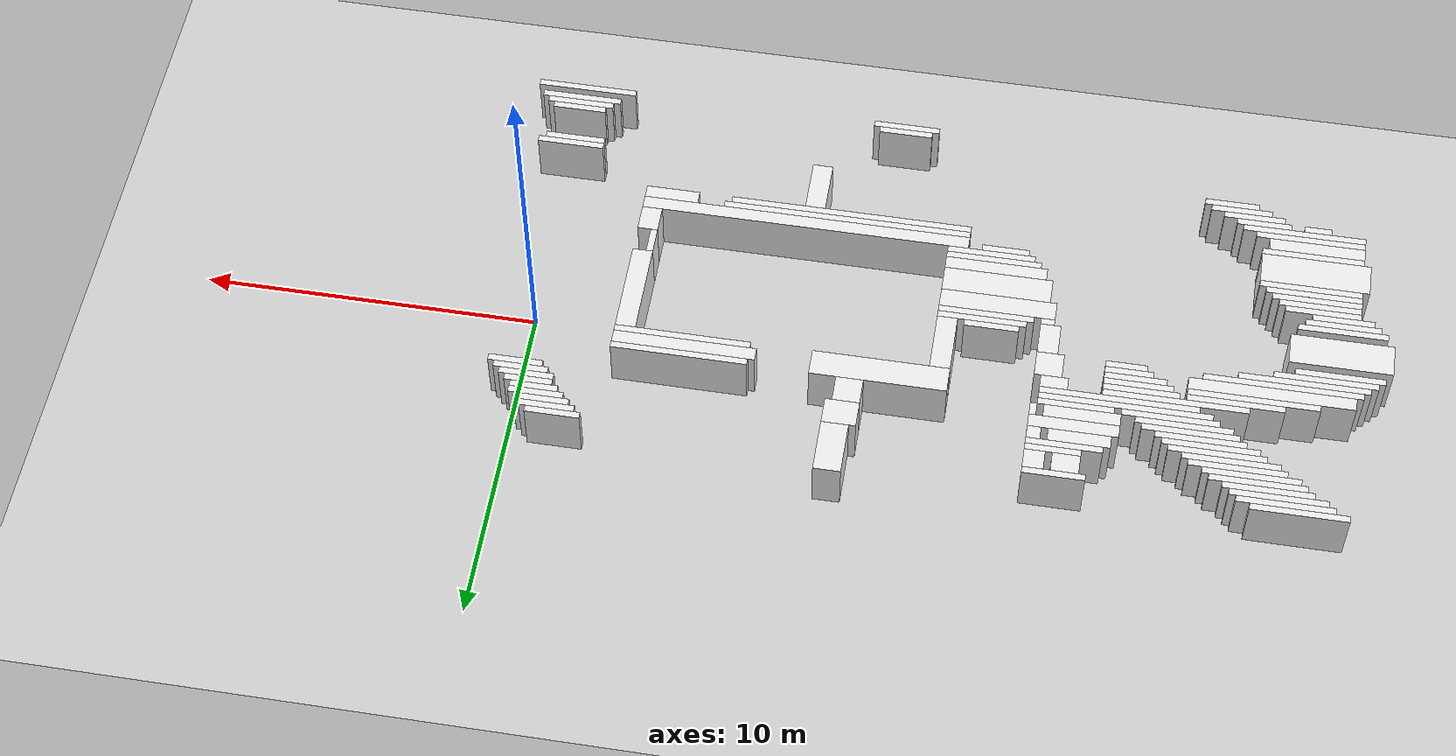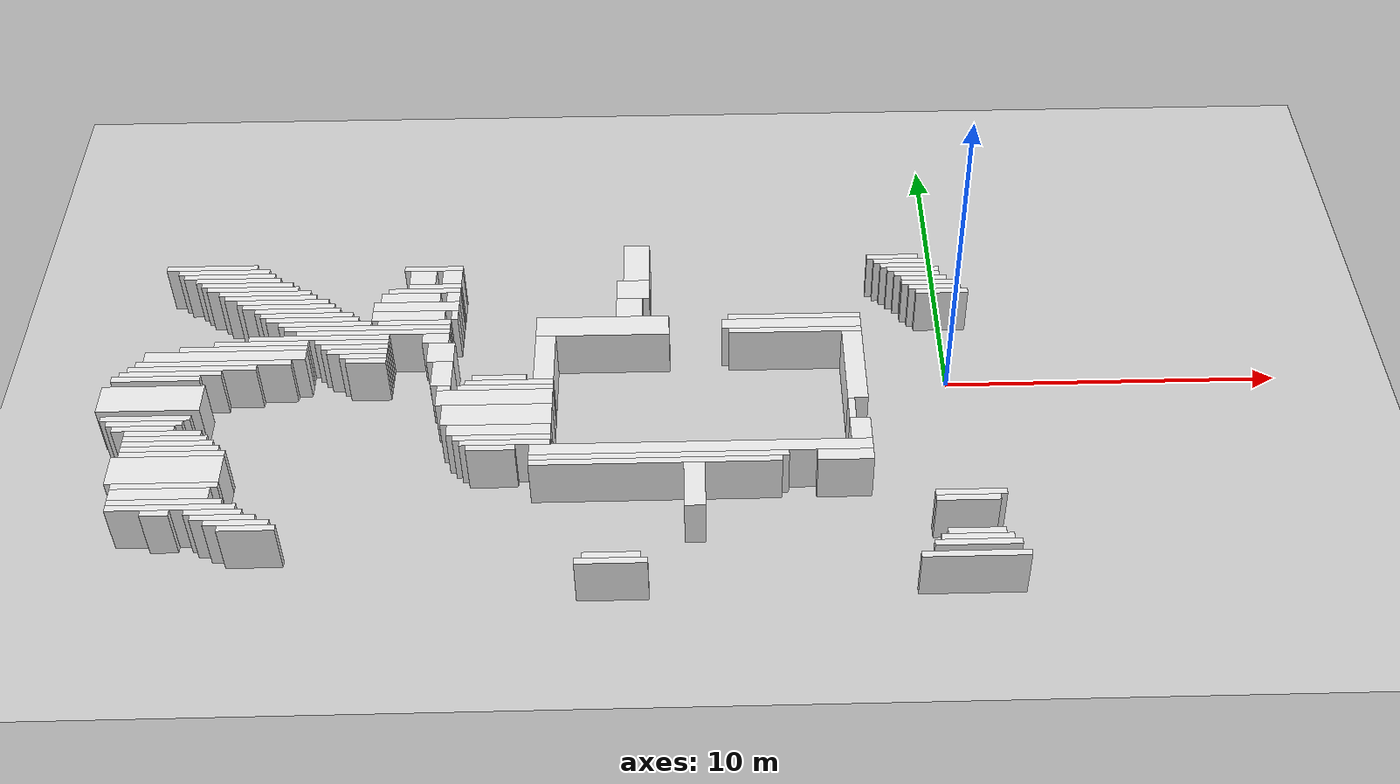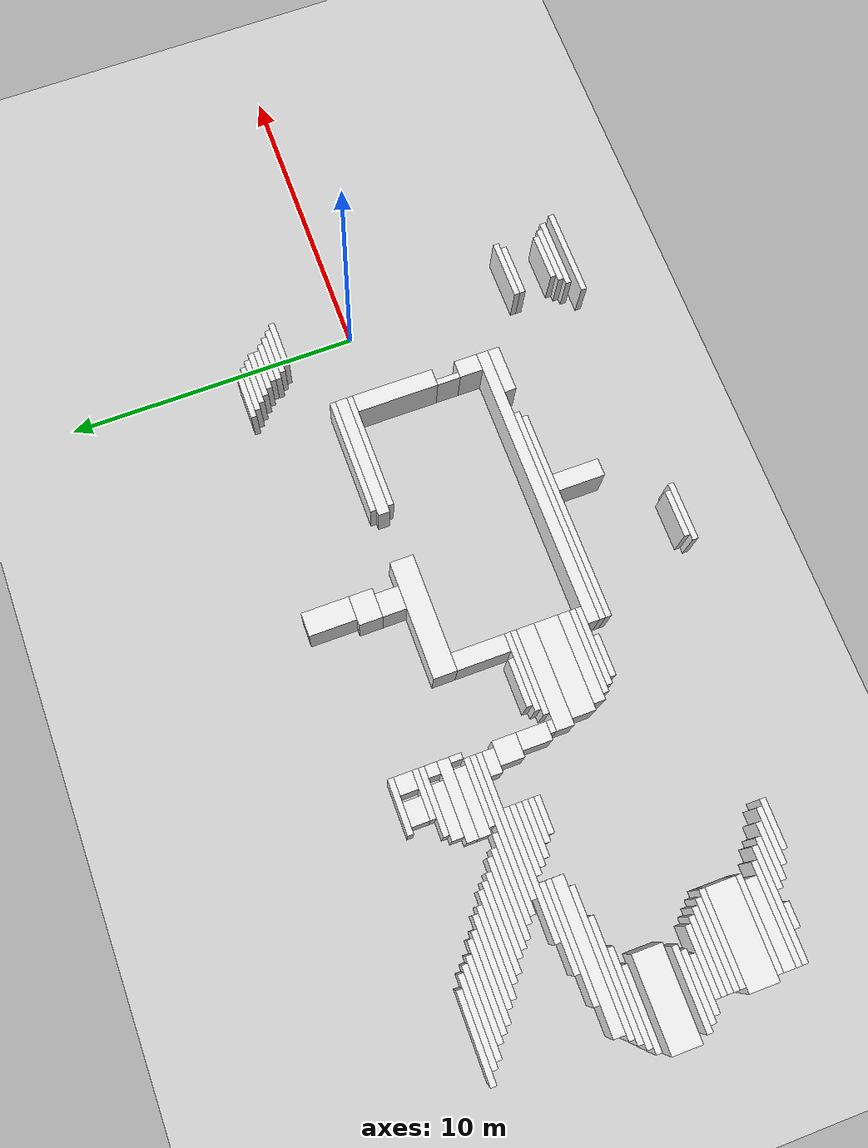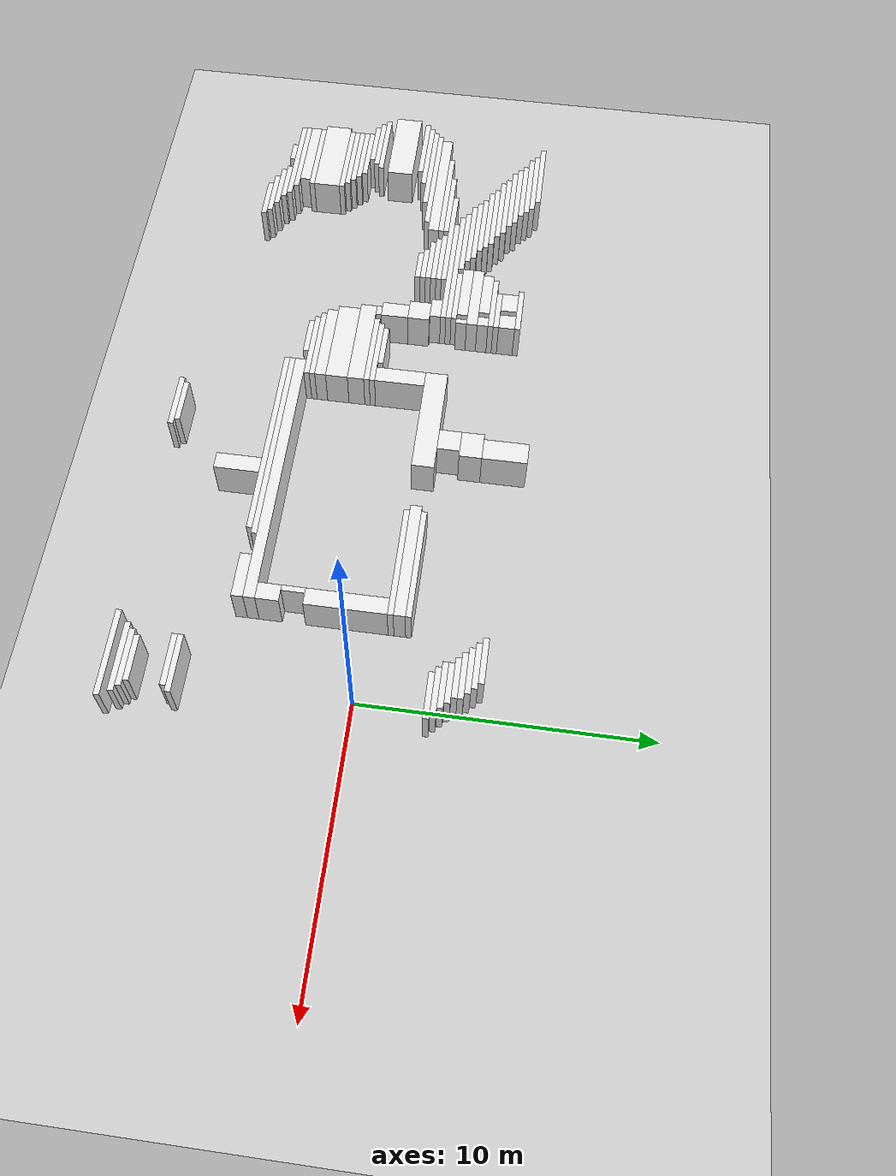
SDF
<sdf version="1.7">
 <world name="default">
  <model name="ground_plane">
   <static>1</static>
   <link name="link">
    <collision name="collision">
     <geometry><plane><normal>0 0 1</normal><size>120 120</size></plane></geometry>
    </collision>
    <visual name="visual">
     <geometry><plane><normal>0 0 1</normal><size>120 120</size></plane></geometry>
     <material>
      <script><uri>file://media/materials/scripts/gazebo.material</uri><name>Gazebo/Grey</name></script>
     </material>
    </visual>
   </link>
  </model>
  <model name="random_complex_02_model">
   <static>1</static>
   <link name="obs_1786">
    <pose>-22.6000 4.1000 0.8000 0 0 0</pose>
    <collision name="obs_1786_col"><geometry><box><size>2.8000 0.2000 1.6000</size></box></geometry></collision>
    <visual name="obs_1786_vis">
     <geometry><box><size>2.8000 0.2000 1.6000</size></box></geometry>
     <material>
      <script><uri>file://media/materials/scripts/gazebo.material</uri><name>Gazebo/White</name></script>
     </material>
    </visual>
   </link>
   <link name="obs_1787">
    <pose>-1.4000 4.1000 0.8000 0 0 0</pose>
    <collision name="obs_1787_col"><geometry><box><size>1.6000 0.2000 1.6000</size></box></geometry></collision>
    <visual name="obs_1787_vis">
     <geometry><box><size>1.6000 0.2000 1.6000</size></box></geometry>
     <material>
      <script><uri>file://media/materials/scripts/gazebo.material</uri><name>Gazebo/White</name></script>
     </material>
    </visual>
   </link>
   <link name="obs_1799">
    <pose>-22.2000 3.9000 0.8000 0 0 0</pose>
    <collision name="obs_1799_col"><geometry><box><size>2.8000 0.2000 1.6000</size></box></geometry></collision>
    <visual name="obs_1799_vis">
     <geometry><box><size>2.8000 0.2000 1.6000</size></box></geometry>
     <material>
      <script><uri>file://media/materials/scripts/gazebo.material</uri><name>Gazebo/White</name></script>
     </material>
    </visual>
   </link>
   <link name="obs_1800">
    <pose>-15.7000 3.9000 0.8000 0 0 0</pose>
    <collision name="obs_1800_col"><geometry><box><size>1.8000 0.2000 1.6000</size></box></geometry></collision>
    <visual name="obs_1800_vis">
     <geometry><box><size>1.8000 0.2000 1.6000</size></box></geometry>
     <material>
      <script><uri>file://media/materials/scripts/gazebo.material</uri><name>Gazebo/White</name></script>
     </material>
    </visual>
   </link>
   <link name="obs_1801">
    <pose>-1.2000 3.9000 0.8000 0 0 0</pose>
    <collision name="obs_1801_col"><geometry><box><size>1.6000 0.2000 1.6000</size></box></geometry></collision>
    <visual name="obs_1801_vis">
     <geometry><box><size>1.6000 0.2000 1.6000</size></box></geometry>
     <material>
      <script><uri>file://media/materials/scripts/gazebo.material</uri><name>Gazebo/White</name></script>
     </material>
    </visual>
   </link>
   <link name="obs_1809">
    <pose>-22.0000 3.7000 0.8000 0 0 0</pose>
    <collision name="obs_1809_col"><geometry><box><size>2.8000 0.2000 1.6000</size></box></geometry></collision>
    <visual name="obs_1809_vis">
     <geometry><box><size>2.8000 0.2000 1.6000</size></box></geometry>
     <material>
      <script><uri>file://media/materials/scripts/gazebo.material</uri><name>Gazebo/White</name></script>
     </material>
    </visual>
   </link>
   <link name="obs_1810">
    <pose>-1.0000 3.7000 0.8000 0 0 0</pose>
    <collision name="obs_1810_col"><geometry><box><size>1.6000 0.2000 1.6000</size></box></geometry></collision>
    <visual name="obs_1810_vis">
     <geometry><box><size>1.6000 0.2000 1.6000</size></box></geometry>
     <material>
      <script><uri>file://media/materials/scripts/gazebo.material</uri><name>Gazebo/White</name></script>
     </material>
    </visual>
   </link>
   <link name="obs_1813">
    <pose>-21.7000 3.5000 0.8000 0 0 0</pose>
    <collision name="obs_1813_col"><geometry><box><size>2.6000 0.2000 1.6000</size></box></geometry></collision>
    <visual name="obs_1813_vis">
     <geometry><box><size>2.6000 0.2000 1.6000</size></box></geometry>
     <material>
      <script><uri>file://media/materials/scripts/gazebo.material</uri><name>Gazebo/White</name></script>
     </material>
    </visual>
   </link>
   <link name="obs_1814">
    <pose>-0.8000 3.5000 0.8000 0 0 0</pose>
    <collision name="obs_1814_col"><geometry><box><size>1.6000 0.2000 1.6000</size></box></geometry></collision>
    <visual name="obs_1814_vis">
     <geometry><box><size>1.6000 0.2000 1.6000</size></box></geometry>
     <material>
      <script><uri>file://media/materials/scripts/gazebo.material</uri><name>Gazebo/White</name></script>
     </material>
    </visual>
   </link>
   <link name="obs_1816">
    <pose>-9.4000 4.0000 0.8000 0 0 0</pose>
    <collision name="obs_1816_col"><geometry><box><size>0.8000 1.6000 1.6000</size></box></geometry></collision>
    <visual name="obs_1816_vis">
     <geometry><box><size>0.8000 1.6000 1.6000</size></box></geometry>
     <material>
      <script><uri>file://media/materials/scripts/gazebo.material</uri><name>Gazebo/White</name></script>
     </material>
    </visual>
   </link>
   <link name="obs_1817">
    <pose>-16.0000 3.5000 0.8000 0 0 0</pose>
    <collision name="obs_1817_col"><geometry><box><size>0.8000 0.6000 1.6000</size></box></geometry></collision>
    <visual name="obs_1817_vis">
     <geometry><box><size>0.8000 0.6000 1.6000</size></box></geometry>
     <material>
      <script><uri>file://media/materials/scripts/gazebo.material</uri><name>Gazebo/White</name></script>
     </material>
    </visual>
   </link>
   <link name="obs_1818">
    <pose>-15.1000 3.5000 0.8000 0 0 0</pose>
    <collision name="obs_1818_col"><geometry><box><size>0.6000 0.6000 1.6000</size></box></geometry></collision>
    <visual name="obs_1818_vis">
     <geometry><box><size>0.6000 0.6000 1.6000</size></box></geometry>
     <material>
      <script><uri>file://media/materials/scripts/gazebo.material</uri><name>Gazebo/White</name></script>
     </material>
    </visual>
   </link>
   <link name="obs_1823">
    <pose>-21.4000 3.3000 0.8000 0 0 0</pose>
    <collision name="obs_1823_col"><geometry><box><size>2.8000 0.2000 1.6000</size></box></geometry></collision>
    <visual name="obs_1823_vis">
     <geometry><box><size>2.8000 0.2000 1.6000</size></box></geometry>
     <material>
      <script><uri>file://media/materials/scripts/gazebo.material</uri><name>Gazebo/White</name></script>
     </material>
    </visual>
   </link>
   <link name="obs_1824">
    <pose>-0.7000 3.3000 0.8000 0 0 0</pose>
    <collision name="obs_1824_col"><geometry><box><size>1.4000 0.2000 1.6000</size></box></geometry></collision>
    <visual name="obs_1824_vis">
     <geometry><box><size>1.4000 0.2000 1.6000</size></box></geometry>
     <material>
      <script><uri>file://media/materials/scripts/gazebo.material</uri><name>Gazebo/White</name></script>
     </material>
    </visual>
   </link>
   <link name="obs_1825">
    <pose>-21.2000 3.1000 0.8000 0 0 0</pose>
    <collision name="obs_1825_col"><geometry><box><size>2.8000 0.2000 1.6000</size></box></geometry></collision>
    <visual name="obs_1825_vis">
     <geometry><box><size>2.8000 0.2000 1.6000</size></box></geometry>
     <material>
      <script><uri>file://media/materials/scripts/gazebo.material</uri><name>Gazebo/White</name></script>
     </material>
    </visual>
   </link>
   <link name="obs_1826">
    <pose>-15.6000 3.1000 0.8000 0 0 0</pose>
    <collision name="obs_1826_col"><geometry><box><size>1.6000 0.2000 1.6000</size></box></geometry></collision>
    <visual name="obs_1826_vis">
     <geometry><box><size>1.6000 0.2000 1.6000</size></box></geometry>
     <material>
      <script><uri>file://media/materials/scripts/gazebo.material</uri><name>Gazebo/White</name></script>
     </material>
    </visual>
   </link>
   <link name="obs_1827">
    <pose>-0.5000 3.1000 0.8000 0 0 0</pose>
    <collision name="obs_1827_col"><geometry><box><size>1.4000 0.2000 1.6000</size></box></geometry></collision>
    <visual name="obs_1827_vis">
     <geometry><box><size>1.4000 0.2000 1.6000</size></box></geometry>
     <material>
      <script><uri>file://media/materials/scripts/gazebo.material</uri><name>Gazebo/White</name></script>
     </material>
    </visual>
   </link>
   <link name="obs_1832">
    <pose>-20.8000 2.9000 0.8000 0 0 0</pose>
    <collision name="obs_1832_col"><geometry><box><size>2.8000 0.2000 1.6000</size></box></geometry></collision>
    <visual name="obs_1832_vis">
     <geometry><box><size>2.8000 0.2000 1.6000</size></box></geometry>
     <material>
      <script><uri>file://media/materials/scripts/gazebo.material</uri><name>Gazebo/White</name></script>
     </material>
    </visual>
   </link>
   <link name="obs_1833">
    <pose>-15.9000 2.9000 0.8000 0 0 0</pose>
    <collision name="obs_1833_col"><geometry><box><size>2.2000 0.2000 1.6000</size></box></geometry></collision>
    <visual name="obs_1833_vis">
     <geometry><box><size>2.2000 0.2000 1.6000</size></box></geometry>
     <material>
      <script><uri>file://media/materials/scripts/gazebo.material</uri><name>Gazebo/White</name></script>
     </material>
    </visual>
   </link>
   <link name="obs_1834">
    <pose>-0.4000 2.9000 0.8000 0 0 0</pose>
    <collision name="obs_1834_col"><geometry><box><size>1.6000 0.2000 1.6000</size></box></geometry></collision>
    <visual name="obs_1834_vis">
     <geometry><box><size>1.6000 0.2000 1.6000</size></box></geometry>
     <material>
      <script><uri>file://media/materials/scripts/gazebo.material</uri><name>Gazebo/White</name></script>
     </material>
    </visual>
   </link>
   <link name="obs_1842">
    <pose>-20.6000 2.7000 0.8000 0 0 0</pose>
    <collision name="obs_1842_col"><geometry><box><size>2.8000 0.2000 1.6000</size></box></geometry></collision>
    <visual name="obs_1842_vis">
     <geometry><box><size>2.8000 0.2000 1.6000</size></box></geometry>
     <material>
      <script><uri>file://media/materials/scripts/gazebo.material</uri><name>Gazebo/White</name></script>
     </material>
    </visual>
   </link>
   <link name="obs_1843">
    <pose>-0.2000 2.7000 0.8000 0 0 0</pose>
    <collision name="obs_1843_col"><geometry><box><size>1.6000 0.2000 1.6000</size></box></geometry></collision>
    <visual name="obs_1843_vis">
     <geometry><box><size>1.6000 0.2000 1.6000</size></box></geometry>
     <material>
      <script><uri>file://media/materials/scripts/gazebo.material</uri><name>Gazebo/White</name></script>
     </material>
    </visual>
   </link>
   <link name="obs_1848">
    <pose>-9.5000 2.8000 0.8000 0 0 0</pose>
    <collision name="obs_1848_col"><geometry><box><size>1.0000 0.8000 1.6000</size></box></geometry></collision>
    <visual name="obs_1848_vis">
     <geometry><box><size>1.0000 0.8000 1.6000</size></box></geometry>
     <material>
      <script><uri>file://media/materials/scripts/gazebo.material</uri><name>Gazebo/White</name></script>
     </material>
    </visual>
   </link>
   <link name="obs_1849">
    <pose>-16.3000 2.6000 0.8000 0 0 0</pose>
    <collision name="obs_1849_col"><geometry><box><size>1.8000 0.4000 1.6000</size></box></geometry></collision>
    <visual name="obs_1849_vis">
     <geometry><box><size>1.8000 0.4000 1.6000</size></box></geometry>
     <material>
      <script><uri>file://media/materials/scripts/gazebo.material</uri><name>Gazebo/White</name></script>
     </material>
    </visual>
   </link>
   <link name="obs_1850">
    <pose>-15.0000 2.6000 0.8000 0 0 0</pose>
    <collision name="obs_1850_col"><geometry><box><size>0.4000 0.4000 1.6000</size></box></geometry></collision>
    <visual name="obs_1850_vis">
     <geometry><box><size>0.4000 0.4000 1.6000</size></box></geometry>
     <material>
      <script><uri>file://media/materials/scripts/gazebo.material</uri><name>Gazebo/White</name></script>
     </material>
    </visual>
   </link>
   <link name="obs_1851">
    <pose>-20.2000 2.5000 0.8000 0 0 0</pose>
    <collision name="obs_1851_col"><geometry><box><size>2.8000 0.2000 1.6000</size></box></geometry></collision>
    <visual name="obs_1851_vis">
     <geometry><box><size>2.8000 0.2000 1.6000</size></box></geometry>
     <material>
      <script><uri>file://media/materials/scripts/gazebo.material</uri><name>Gazebo/White</name></script>
     </material>
    </visual>
   </link>
   <link name="obs_1852">
    <pose>0.0000 2.5000 0.8000 0 0 0</pose>
    <collision name="obs_1852_col"><geometry><box><size>1.6000 0.2000 1.6000</size></box></geometry></collision>
    <visual name="obs_1852_vis">
     <geometry><box><size>1.6000 0.2000 1.6000</size></box></geometry>
     <material>
      <script><uri>file://media/materials/scripts/gazebo.material</uri><name>Gazebo/White</name></script>
     </material>
    </visual>
   </link>
   <link name="obs_1860">
    <pose>-20.0000 2.3000 0.8000 0 0 0</pose>
    <collision name="obs_1860_col"><geometry><box><size>2.8000 0.2000 1.6000</size></box></geometry></collision>
    <visual name="obs_1860_vis">
     <geometry><box><size>2.8000 0.2000 1.6000</size></box></geometry>
     <material>
      <script><uri>file://media/materials/scripts/gazebo.material</uri><name>Gazebo/White</name></script>
     </material>
    </visual>
   </link>
   <link name="obs_1870">
    <pose>-16.1000 2.2000 0.8000 0 0 0</pose>
    <collision name="obs_1870_col"><geometry><box><size>2.6000 0.4000 1.6000</size></box></geometry></collision>
    <visual name="obs_1870_vis">
     <geometry><box><size>2.6000 0.4000 1.6000</size></box></geometry>
     <material>
      <script><uri>file://media/materials/scripts/gazebo.material</uri><name>Gazebo/White</name></script>
     </material>
    </visual>
   </link>
   <link name="obs_1871">
    <pose>-19.7000 2.1000 0.8000 0 0 0</pose>
    <collision name="obs_1871_col"><geometry><box><size>2.6000 0.2000 1.6000</size></box></geometry></collision>
    <visual name="obs_1871_vis">
     <geometry><box><size>2.6000 0.2000 1.6000</size></box></geometry>
     <material>
      <script><uri>file://media/materials/scripts/gazebo.material</uri><name>Gazebo/White</name></script>
     </material>
    </visual>
   </link>
   <link name="obs_1877">
    <pose>-19.4000 1.9000 0.8000 0 0 0</pose>
    <collision name="obs_1877_col"><geometry><box><size>2.8000 0.2000 1.6000</size></box></geometry></collision>
    <visual name="obs_1877_vis">
     <geometry><box><size>2.8000 0.2000 1.6000</size></box></geometry>
     <material>
      <script><uri>file://media/materials/scripts/gazebo.material</uri><name>Gazebo/White</name></script>
     </material>
    </visual>
   </link>
   <link name="obs_1883">
    <pose>-9.6000 2.0000 0.8000 0 0 0</pose>
    <collision name="obs_1883_col"><geometry><box><size>0.8000 0.8000 1.6000</size></box></geometry></collision>
    <visual name="obs_1883_vis">
     <geometry><box><size>0.8000 0.8000 1.6000</size></box></geometry>
     <material>
      <script><uri>file://media/materials/scripts/gazebo.material</uri><name>Gazebo/White</name></script>
     </material>
    </visual>
   </link>
   <link name="obs_1885">
    <pose>-16.3000 1.8000 0.8000 0 0 0</pose>
    <collision name="obs_1885_col"><geometry><box><size>2.2000 0.4000 1.6000</size></box></geometry></collision>
    <visual name="obs_1885_vis">
     <geometry><box><size>2.2000 0.4000 1.6000</size></box></geometry>
     <material>
      <script><uri>file://media/materials/scripts/gazebo.material</uri><name>Gazebo/White</name></script>
     </material>
    </visual>
   </link>
   <link name="obs_1886">
    <pose>-14.9000 1.8000 0.8000 0 0 0</pose>
    <collision name="obs_1886_col"><geometry><box><size>0.2000 0.4000 1.6000</size></box></geometry></collision>
    <visual name="obs_1886_vis">
     <geometry><box><size>0.2000 0.4000 1.6000</size></box></geometry>
     <material>
      <script><uri>file://media/materials/scripts/gazebo.material</uri><name>Gazebo/White</name></script>
     </material>
    </visual>
   </link>
   <link name="obs_1889">
    <pose>-19.2000 1.7000 0.8000 0 0 0</pose>
    <collision name="obs_1889_col"><geometry><box><size>2.8000 0.2000 1.6000</size></box></geometry></collision>
    <visual name="obs_1889_vis">
     <geometry><box><size>2.8000 0.2000 1.6000</size></box></geometry>
     <material>
      <script><uri>file://media/materials/scripts/gazebo.material</uri><name>Gazebo/White</name></script>
     </material>
    </visual>
   </link>
   <link name="obs_1898">
    <pose>-18.8000 1.5000 0.8000 0 0 0</pose>
    <collision name="obs_1898_col"><geometry><box><size>2.8000 0.2000 1.6000</size></box></geometry></collision>
    <visual name="obs_1898_vis">
     <geometry><box><size>2.8000 0.2000 1.6000</size></box></geometry>
     <material>
      <script><uri>file://media/materials/scripts/gazebo.material</uri><name>Gazebo/White</name></script>
     </material>
    </visual>
   </link>
   <link name="obs_1899">
    <pose>-16.1000 1.5000 0.8000 0 0 0</pose>
    <collision name="obs_1899_col"><geometry><box><size>2.2000 0.2000 1.6000</size></box></geometry></collision>
    <visual name="obs_1899_vis">
     <geometry><box><size>2.2000 0.2000 1.6000</size></box></geometry>
     <material>
      <script><uri>file://media/materials/scripts/gazebo.material</uri><name>Gazebo/White</name></script>
     </material>
    </visual>
   </link>
   <link name="obs_1900">
    <pose>-4.6000 1.5000 0.8000 0 0 0</pose>
    <collision name="obs_1900_col"><geometry><box><size>4.0000 0.2000 1.6000</size></box></geometry></collision>
    <visual name="obs_1900_vis">
     <geometry><box><size>4.0000 0.2000 1.6000</size></box></geometry>
     <material>
      <script><uri>file://media/materials/scripts/gazebo.material</uri><name>Gazebo/White</name></script>
     </material>
    </visual>
   </link>
   <link name="obs_1907">
    <pose>-17.5000 1.3000 0.8000 0 0 0</pose>
    <collision name="obs_1907_col"><geometry><box><size>5.0000 0.2000 1.6000</size></box></geometry></collision>
    <visual name="obs_1907_vis">
     <geometry><box><size>5.0000 0.2000 1.6000</size></box></geometry>
     <material>
      <script><uri>file://media/materials/scripts/gazebo.material</uri><name>Gazebo/White</name></script>
     </material>
    </visual>
   </link>
   <link name="obs_1916">
    <pose>-4.7000 1.2000 0.8000 0 0 0</pose>
    <collision name="obs_1916_col"><geometry><box><size>4.2000 0.4000 1.6000</size></box></geometry></collision>
    <visual name="obs_1916_vis">
     <geometry><box><size>4.2000 0.4000 1.6000</size></box></geometry>
     <material>
      <script><uri>file://media/materials/scripts/gazebo.material</uri><name>Gazebo/White</name></script>
     </material>
    </visual>
   </link>
   <link name="obs_1917">
    <pose>-17.3000 1.1000 0.8000 0 0 0</pose>
    <collision name="obs_1917_col"><geometry><box><size>4.6000 0.2000 1.6000</size></box></geometry></collision>
    <visual name="obs_1917_vis">
     <geometry><box><size>4.6000 0.2000 1.6000</size></box></geometry>
     <material>
      <script><uri>file://media/materials/scripts/gazebo.material</uri><name>Gazebo/White</name></script>
     </material>
    </visual>
   </link>
   <link name="obs_1924">
    <pose>-10.4000 1.2000 0.8000 0 0 0</pose>
    <collision name="obs_1924_col"><geometry><box><size>4.0000 0.8000 1.6000</size></box></geometry></collision>
    <visual name="obs_1924_vis">
     <geometry><box><size>4.0000 0.8000 1.6000</size></box></geometry>
     <material>
      <script><uri>file://media/materials/scripts/gazebo.material</uri><name>Gazebo/White</name></script>
     </material>
    </visual>
   </link>
   <link name="obs_1928">
    <pose>-18.9000 0.9000 0.8000 0 0 0</pose>
    <collision name="obs_1928_col"><geometry><box><size>4.2000 0.2000 1.6000</size></box></geometry></collision>
    <visual name="obs_1928_vis">
     <geometry><box><size>4.2000 0.2000 1.6000</size></box></geometry>
     <material>
      <script><uri>file://media/materials/scripts/gazebo.material</uri><name>Gazebo/White</name></script>
     </material>
    </visual>
   </link>
   <link name="obs_1929">
    <pose>-4.6000 0.9000 0.8000 0 0 0</pose>
    <collision name="obs_1929_col"><geometry><box><size>4.0000 0.2000 1.6000</size></box></geometry></collision>
    <visual name="obs_1929_vis">
     <geometry><box><size>4.0000 0.2000 1.6000</size></box></geometry>
     <material>
      <script><uri>file://media/materials/scripts/gazebo.material</uri><name>Gazebo/White</name></script>
     </material>
    </visual>
   </link>
   <link name="obs_1936">
    <pose>-15.4000 0.8000 0.8000 0 0 0</pose>
    <collision name="obs_1936_col"><geometry><box><size>0.8000 0.4000 1.6000</size></box></geometry></collision>
    <visual name="obs_1936_vis">
     <geometry><box><size>0.8000 0.4000 1.6000</size></box></geometry>
     <material>
      <script><uri>file://media/materials/scripts/gazebo.material</uri><name>Gazebo/White</name></script>
     </material>
    </visual>
   </link>
   <link name="obs_1938">
    <pose>-20.6000 0.7000 0.8000 0 0 0</pose>
    <collision name="obs_1938_col"><geometry><box><size>2.8000 0.2000 1.6000</size></box></geometry></collision>
    <visual name="obs_1938_vis">
     <geometry><box><size>2.8000 0.2000 1.6000</size></box></geometry>
     <material>
      <script><uri>file://media/materials/scripts/gazebo.material</uri><name>Gazebo/White</name></script>
     </material>
    </visual>
   </link>
   <link name="obs_1939">
    <pose>-17.9000 0.7000 0.8000 0 0 0</pose>
    <collision name="obs_1939_col"><geometry><box><size>2.2000 0.2000 1.6000</size></box></geometry></collision>
    <visual name="obs_1939_vis">
     <geometry><box><size>2.2000 0.2000 1.6000</size></box></geometry>
     <material>
      <script><uri>file://media/materials/scripts/gazebo.material</uri><name>Gazebo/White</name></script>
     </material>
    </visual>
   </link>
   <link name="obs_1948">
    <pose>-21.1000 0.5000 0.8000 0 0 0</pose>
    <collision name="obs_1948_col"><geometry><box><size>3.8000 0.2000 1.6000</size></box></geometry></collision>
    <visual name="obs_1948_vis">
     <geometry><box><size>3.8000 0.2000 1.6000</size></box></geometry>
     <material>
      <script><uri>file://media/materials/scripts/gazebo.material</uri><name>Gazebo/White</name></script>
     </material>
    </visual>
   </link>
   <link name="obs_1949">
    <pose>-17.8000 0.5000 0.8000 0 0 0</pose>
    <collision name="obs_1949_col"><geometry><box><size>2.0000 0.2000 1.6000</size></box></geometry></collision>
    <visual name="obs_1949_vis">
     <geometry><box><size>2.0000 0.2000 1.6000</size></box></geometry>
     <material>
      <script><uri>file://media/materials/scripts/gazebo.material</uri><name>Gazebo/White</name></script>
     </material>
    </visual>
   </link>
   <link name="obs_1955">
    <pose>-17.7000 0.3000 0.8000 0 0 0</pose>
    <collision name="obs_1955_col"><geometry><box><size>1.8000 0.2000 1.6000</size></box></geometry></collision>
    <visual name="obs_1955_vis">
     <geometry><box><size>1.8000 0.2000 1.6000</size></box></geometry>
     <material>
      <script><uri>file://media/materials/scripts/gazebo.material</uri><name>Gazebo/White</name></script>
     </material>
    </visual>
   </link>
   <link name="obs_1961">
    <pose>-21.6000 0.2000 0.8000 0 0 0</pose>
    <collision name="obs_1961_col"><geometry><box><size>4.8000 0.4000 1.6000</size></box></geometry></collision>
    <visual name="obs_1961_vis">
     <geometry><box><size>4.8000 0.4000 1.6000</size></box></geometry>
     <material>
      <script><uri>file://media/materials/scripts/gazebo.material</uri><name>Gazebo/White</name></script>
     </material>
    </visual>
   </link>
   <link name="obs_1964">
    <pose>-17.5000 0.1000 0.8000 0 0 0</pose>
    <collision name="obs_1964_col"><geometry><box><size>1.4000 0.2000 1.6000</size></box></geometry></collision>
    <visual name="obs_1964_vis">
     <geometry><box><size>1.4000 0.2000 1.6000</size></box></geometry>
     <material>
      <script><uri>file://media/materials/scripts/gazebo.material</uri><name>Gazebo/White</name></script>
     </material>
    </visual>
   </link>
   <link name="obs_1970">
    <pose>-15.2000 0.2000 0.8000 0 0 0</pose>
    <collision name="obs_1970_col"><geometry><box><size>0.8000 0.8000 1.6000</size></box></geometry></collision>
    <visual name="obs_1970_vis">
     <geometry><box><size>0.8000 0.8000 1.6000</size></box></geometry>
     <material>
      <script><uri>file://media/materials/scripts/gazebo.material</uri><name>Gazebo/White</name></script>
     </material>
    </visual>
   </link>
   <link name="obs_1973">
    <pose>-21.9000 -0.1000 0.8000 0 0 0</pose>
    <collision name="obs_1973_col"><geometry><box><size>4.6000 0.2000 1.6000</size></box></geometry></collision>
    <visual name="obs_1973_vis">
     <geometry><box><size>4.6000 0.2000 1.6000</size></box></geometry>
     <material>
      <script><uri>file://media/materials/scripts/gazebo.material</uri><name>Gazebo/White</name></script>
     </material>
    </visual>
   </link>
   <link name="obs_1974">
    <pose>-17.4000 -0.1000 0.8000 0 0 0</pose>
    <collision name="obs_1974_col"><geometry><box><size>1.2000 0.2000 1.6000</size></box></geometry></collision>
    <visual name="obs_1974_vis">
     <geometry><box><size>1.2000 0.2000 1.6000</size></box></geometry>
     <material>
      <script><uri>file://media/materials/scripts/gazebo.material</uri><name>Gazebo/White</name></script>
     </material>
    </visual>
   </link>
   <link name="obs_1981">
    <pose>-22.5000 -0.3000 0.8000 0 0 0</pose>
    <collision name="obs_1981_col"><geometry><box><size>3.8000 0.2000 1.6000</size></box></geometry></collision>
    <visual name="obs_1981_vis">
     <geometry><box><size>3.8000 0.2000 1.6000</size></box></geometry>
     <material>
      <script><uri>file://media/materials/scripts/gazebo.material</uri><name>Gazebo/White</name></script>
     </material>
    </visual>
   </link>
   <link name="obs_1989">
    <pose>-23.1000 -0.5000 0.8000 0 0 0</pose>
    <collision name="obs_1989_col"><geometry><box><size>3.0000 0.2000 1.6000</size></box></geometry></collision>
    <visual name="obs_1989_vis">
     <geometry><box><size>3.0000 0.2000 1.6000</size></box></geometry>
     <material>
      <script><uri>file://media/materials/scripts/gazebo.material</uri><name>Gazebo/White</name></script>
     </material>
    </visual>
   </link>
   <link name="obs_1997">
    <pose>-23.5000 -0.7000 0.8000 0 0 0</pose>
    <collision name="obs_1997_col"><geometry><box><size>2.6000 0.2000 1.6000</size></box></geometry></collision>
    <visual name="obs_1997_vis">
     <geometry><box><size>2.6000 0.2000 1.6000</size></box></geometry>
     <material>
      <script><uri>file://media/materials/scripts/gazebo.material</uri><name>Gazebo/White</name></script>
     </material>
    </visual>
   </link>
   <link name="obs_2004">
    <pose>-12.1000 -0.1000 0.8000 0 0 0</pose>
    <collision name="obs_2004_col"><geometry><box><size>0.6000 1.8000 1.6000</size></box></geometry></collision>
    <visual name="obs_2004_vis">
     <geometry><box><size>0.6000 1.8000 1.6000</size></box></geometry>
     <material>
      <script><uri>file://media/materials/scripts/gazebo.material</uri><name>Gazebo/White</name></script>
     </material>
    </visual>
   </link>
   <link name="obs_2009">
    <pose>-13.4000 -0.9000 0.8000 0 0 0</pose>
    <collision name="obs_2009_col"><geometry><box><size>1.6000 0.2000 1.6000</size></box></geometry></collision>
    <visual name="obs_2009_vis">
     <geometry><box><size>1.6000 0.2000 1.6000</size></box></geometry>
     <material>
      <script><uri>file://media/materials/scripts/gazebo.material</uri><name>Gazebo/White</name></script>
     </material>
    </visual>
   </link>
   <link name="obs_2015">
    <pose>-15.1000 -0.7000 0.8000 0 0 0</pose>
    <collision name="obs_2015_col"><geometry><box><size>0.6000 1.0000 1.6000</size></box></geometry></collision>
    <visual name="obs_2015_vis">
     <geometry><box><size>0.6000 1.0000 1.6000</size></box></geometry>
     <material>
      <script><uri>file://media/materials/scripts/gazebo.material</uri><name>Gazebo/White</name></script>
     </material>
    </visual>
   </link>
   <link name="obs_2017">
    <pose>-13.1000 -1.1000 0.8000 0 0 0</pose>
    <collision name="obs_2017_col"><geometry><box><size>2.6000 0.2000 1.6000</size></box></geometry></collision>
    <visual name="obs_2017_vis">
     <geometry><box><size>2.6000 0.2000 1.6000</size></box></geometry>
     <material>
      <script><uri>file://media/materials/scripts/gazebo.material</uri><name>Gazebo/White</name></script>
     </material>
    </visual>
   </link>
   <link name="obs_2027">
    <pose>-15.0000 -1.3000 0.8000 0 0 0</pose>
    <collision name="obs_2027_col"><geometry><box><size>0.4000 0.2000 1.6000</size></box></geometry></collision>
    <visual name="obs_2027_vis">
     <geometry><box><size>0.4000 0.2000 1.6000</size></box></geometry>
     <material>
      <script><uri>file://media/materials/scripts/gazebo.material</uri><name>Gazebo/White</name></script>
     </material>
    </visual>
   </link>
   <link name="obs_2028">
    <pose>-13.2000 -1.3000 0.8000 0 0 0</pose>
    <collision name="obs_2028_col"><geometry><box><size>2.8000 0.2000 1.6000</size></box></geometry></collision>
    <visual name="obs_2028_vis">
     <geometry><box><size>2.8000 0.2000 1.6000</size></box></geometry>
     <material>
      <script><uri>file://media/materials/scripts/gazebo.material</uri><name>Gazebo/White</name></script>
     </material>
    </visual>
   </link>
   <link name="obs_2048">
    <pose>-2.9000 -0.6000 0.8000 0 0 0</pose>
    <collision name="obs_2048_col"><geometry><box><size>0.6000 2.8000 1.6000</size></box></geometry></collision>
    <visual name="obs_2048_vis">
     <geometry><box><size>0.6000 2.8000 1.6000</size></box></geometry>
     <material>
      <script><uri>file://media/materials/scripts/gazebo.material</uri><name>Gazebo/White</name></script>
     </material>
    </visual>
   </link>
   <link name="obs_2050">
    <pose>-23.5000 -1.5000 0.8000 0 0 0</pose>
    <collision name="obs_2050_col"><geometry><box><size>3.0000 1.0000 1.6000</size></box></geometry></collision>
    <visual name="obs_2050_vis">
     <geometry><box><size>3.0000 1.0000 1.6000</size></box></geometry>
     <material>
      <script><uri>file://media/materials/scripts/gazebo.material</uri><name>Gazebo/White</name></script>
     </material>
    </visual>
   </link>
   <link name="obs_2051">
    <pose>-13.5000 -1.7000 0.8000 0 0 0</pose>
    <collision name="obs_2051_col"><geometry><box><size>3.4000 0.6000 1.6000</size></box></geometry></collision>
    <visual name="obs_2051_vis">
     <geometry><box><size>3.4000 0.6000 1.6000</size></box></geometry>
     <material>
      <script><uri>file://media/materials/scripts/gazebo.material</uri><name>Gazebo/White</name></script>
     </material>
    </visual>
   </link>
   <link name="obs_2070">
    <pose>-23.5000 -2.3000 0.8000 0 0 0</pose>
    <collision name="obs_2070_col"><geometry><box><size>2.6000 0.2000 1.6000</size></box></geometry></collision>
    <visual name="obs_2070_vis">
     <geometry><box><size>2.6000 0.2000 1.6000</size></box></geometry>
     <material>
      <script><uri>file://media/materials/scripts/gazebo.material</uri><name>Gazebo/White</name></script>
     </material>
    </visual>
   </link>
   <link name="obs_2078">
    <pose>-23.5000 -2.5000 0.8000 0 0 0</pose>
    <collision name="obs_2078_col"><geometry><box><size>2.2000 0.2000 1.6000</size></box></geometry></collision>
    <visual name="obs_2078_vis">
     <geometry><box><size>2.2000 0.2000 1.6000</size></box></geometry>
     <material>
      <script><uri>file://media/materials/scripts/gazebo.material</uri><name>Gazebo/White</name></script>
     </material>
    </visual>
   </link>
   <link name="obs_2082">
    <pose>-13.4000 -2.4000 0.8000 0 0 0</pose>
    <collision name="obs_2082_col"><geometry><box><size>3.2000 0.8000 1.6000</size></box></geometry></collision>
    <visual name="obs_2082_vis">
     <geometry><box><size>3.2000 0.8000 1.6000</size></box></geometry>
     <material>
      <script><uri>file://media/materials/scripts/gazebo.material</uri><name>Gazebo/White</name></script>
     </material>
    </visual>
   </link>
   <link name="obs_2083">
    <pose>-3.1000 -2.4000 0.8000 0 0 0</pose>
    <collision name="obs_2083_col"><geometry><box><size>0.2000 0.8000 1.6000</size></box></geometry></collision>
    <visual name="obs_2083_vis">
     <geometry><box><size>0.2000 0.8000 1.6000</size></box></geometry>
     <material>
      <script><uri>file://media/materials/scripts/gazebo.material</uri><name>Gazebo/White</name></script>
     </material>
    </visual>
   </link>
   <link name="obs_2086">
    <pose>-23.5000 -2.7000 0.8000 0 0 0</pose>
    <collision name="obs_2086_col"><geometry><box><size>1.8000 0.2000 1.6000</size></box></geometry></collision>
    <visual name="obs_2086_vis">
     <geometry><box><size>1.8000 0.2000 1.6000</size></box></geometry>
     <material>
      <script><uri>file://media/materials/scripts/gazebo.material</uri><name>Gazebo/White</name></script>
     </material>
    </visual>
   </link>
   <link name="obs_2091">
    <pose>-22.9000 -2.9000 0.8000 0 0 0</pose>
    <collision name="obs_2091_col"><geometry><box><size>2.2000 0.2000 1.6000</size></box></geometry></collision>
    <visual name="obs_2091_vis">
     <geometry><box><size>2.2000 0.2000 1.6000</size></box></geometry>
     <material>
      <script><uri>file://media/materials/scripts/gazebo.material</uri><name>Gazebo/White</name></script>
     </material>
    </visual>
   </link>
   <link name="obs_2097">
    <pose>-13.3000 -3.0000 0.8000 0 0 0</pose>
    <collision name="obs_2097_col"><geometry><box><size>3.0000 0.4000 1.6000</size></box></geometry></collision>
    <visual name="obs_2097_vis">
     <geometry><box><size>3.0000 0.4000 1.6000</size></box></geometry>
     <material>
      <script><uri>file://media/materials/scripts/gazebo.material</uri><name>Gazebo/White</name></script>
     </material>
    </visual>
   </link>
   <link name="obs_2098">
    <pose>-22.8000 -3.1000 0.8000 0 0 0</pose>
    <collision name="obs_2098_col"><geometry><box><size>2.4000 0.2000 1.6000</size></box></geometry></collision>
    <visual name="obs_2098_vis">
     <geometry><box><size>2.4000 0.2000 1.6000</size></box></geometry>
     <material>
      <script><uri>file://media/materials/scripts/gazebo.material</uri><name>Gazebo/White</name></script>
     </material>
    </visual>
   </link>
   <link name="obs_2107">
    <pose>-22.7000 -3.3000 0.8000 0 0 0</pose>
    <collision name="obs_2107_col"><geometry><box><size>2.6000 0.2000 1.6000</size></box></geometry></collision>
    <visual name="obs_2107_vis">
     <geometry><box><size>2.6000 0.2000 1.6000</size></box></geometry>
     <material>
      <script><uri>file://media/materials/scripts/gazebo.material</uri><name>Gazebo/White</name></script>
     </material>
    </visual>
   </link>
   <link name="obs_2108">
    <pose>-13.2000 -3.3000 0.8000 0 0 0</pose>
    <collision name="obs_2108_col"><geometry><box><size>2.8000 0.2000 1.6000</size></box></geometry></collision>
    <visual name="obs_2108_vis">
     <geometry><box><size>2.8000 0.2000 1.6000</size></box></geometry>
     <material>
      <script><uri>file://media/materials/scripts/gazebo.material</uri><name>Gazebo/White</name></script>
     </material>
    </visual>
   </link>
   <link name="obs_2114">
    <pose>-2.9000 -3.2000 0.8000 0 0 0</pose>
    <collision name="obs_2114_col"><geometry><box><size>0.6000 0.8000 1.6000</size></box></geometry></collision>
    <visual name="obs_2114_vis">
     <geometry><box><size>0.6000 0.8000 1.6000</size></box></geometry>
     <material>
      <script><uri>file://media/materials/scripts/gazebo.material</uri><name>Gazebo/White</name></script>
     </material>
    </visual>
   </link>
   <link name="obs_2115">
    <pose>-22.6000 -3.5000 0.8000 0 0 0</pose>
    <collision name="obs_2115_col"><geometry><box><size>2.8000 0.2000 1.6000</size></box></geometry></collision>
    <visual name="obs_2115_vis">
     <geometry><box><size>2.8000 0.2000 1.6000</size></box></geometry>
     <material>
      <script><uri>file://media/materials/scripts/gazebo.material</uri><name>Gazebo/White</name></script>
     </material>
    </visual>
   </link>
   <link name="obs_2116">
    <pose>-13.1000 -3.5000 0.8000 0 0 0</pose>
    <collision name="obs_2116_col"><geometry><box><size>2.6000 0.2000 1.6000</size></box></geometry></collision>
    <visual name="obs_2116_vis">
     <geometry><box><size>2.6000 0.2000 1.6000</size></box></geometry>
     <material>
      <script><uri>file://media/materials/scripts/gazebo.material</uri><name>Gazebo/White</name></script>
     </material>
    </visual>
   </link>
   <link name="obs_2126">
    <pose>-22.5000 -3.7000 0.8000 0 0 0</pose>
    <collision name="obs_2126_col"><geometry><box><size>3.0000 0.2000 1.6000</size></box></geometry></collision>
    <visual name="obs_2126_vis">
     <geometry><box><size>3.0000 0.2000 1.6000</size></box></geometry>
     <material>
      <script><uri>file://media/materials/scripts/gazebo.material</uri><name>Gazebo/White</name></script>
     </material>
    </visual>
   </link>
   <link name="obs_2127">
    <pose>-13.5000 -3.7000 0.8000 0 0 0</pose>
    <collision name="obs_2127_col"><geometry><box><size>1.4000 0.2000 1.6000</size></box></geometry></collision>
    <visual name="obs_2127_vis">
     <geometry><box><size>1.4000 0.2000 1.6000</size></box></geometry>
     <material>
      <script><uri>file://media/materials/scripts/gazebo.material</uri><name>Gazebo/White</name></script>
     </material>
    </visual>
   </link>
   <link name="obs_2133">
    <pose>-7.5000 -3.8000 0.8000 0 0 0</pose>
    <collision name="obs_2133_col"><geometry><box><size>9.8000 0.4000 1.6000</size></box></geometry></collision>
    <visual name="obs_2133_vis">
     <geometry><box><size>9.8000 0.4000 1.6000</size></box></geometry>
     <material>
      <script><uri>file://media/materials/scripts/gazebo.material</uri><name>Gazebo/White</name></script>
     </material>
    </visual>
   </link>
   <link name="obs_2147">
    <pose>-8.7000 -4.1000 0.8000 0 0 0</pose>
    <collision name="obs_2147_col"><geometry><box><size>7.4000 0.2000 1.6000</size></box></geometry></collision>
    <visual name="obs_2147_vis">
     <geometry><box><size>7.4000 0.2000 1.6000</size></box></geometry>
     <material>
      <script><uri>file://media/materials/scripts/gazebo.material</uri><name>Gazebo/White</name></script>
     </material>
    </visual>
   </link>
   <link name="obs_2154">
    <pose>-3.4000 -4.2000 0.8000 0 0 0</pose>
    <collision name="obs_2154_col"><geometry><box><size>1.6000 0.4000 1.6000</size></box></geometry></collision>
    <visual name="obs_2154_vis">
     <geometry><box><size>1.6000 0.4000 1.6000</size></box></geometry>
     <material>
      <script><uri>file://media/materials/scripts/gazebo.material</uri><name>Gazebo/White</name></script>
     </material>
    </visual>
   </link>
   <link name="obs_2156">
    <pose>-8.8000 -4.3000 0.8000 0 0 0</pose>
    <collision name="obs_2156_col"><geometry><box><size>7.2000 0.2000 1.6000</size></box></geometry></collision>
    <visual name="obs_2156_vis">
     <geometry><box><size>7.2000 0.2000 1.6000</size></box></geometry>
     <material>
      <script><uri>file://media/materials/scripts/gazebo.material</uri><name>Gazebo/White</name></script>
     </material>
    </visual>
   </link>
   <link name="obs_2171">
    <pose>-22.6000 -4.3000 0.8000 0 0 0</pose>
    <collision name="obs_2171_col"><geometry><box><size>3.2000 1.0000 1.6000</size></box></geometry></collision>
    <visual name="obs_2171_vis">
     <geometry><box><size>3.2000 1.0000 1.6000</size></box></geometry>
     <material>
      <script><uri>file://media/materials/scripts/gazebo.material</uri><name>Gazebo/White</name></script>
     </material>
    </visual>
   </link>
   <link name="obs_2180">
    <pose>-22.5000 -4.9000 0.8000 0 0 0</pose>
    <collision name="obs_2180_col"><geometry><box><size>3.0000 0.2000 1.6000</size></box></geometry></collision>
    <visual name="obs_2180_vis">
     <geometry><box><size>3.0000 0.2000 1.6000</size></box></geometry>
     <material>
      <script><uri>file://media/materials/scripts/gazebo.material</uri><name>Gazebo/White</name></script>
     </material>
    </visual>
   </link>
   <link name="obs_2195">
    <pose>-22.6000 -5.2000 0.8000 0 0 0</pose>
    <collision name="obs_2195_col"><geometry><box><size>2.8000 0.4000 1.6000</size></box></geometry></collision>
    <visual name="obs_2195_vis">
     <geometry><box><size>2.8000 0.4000 1.6000</size></box></geometry>
     <material>
      <script><uri>file://media/materials/scripts/gazebo.material</uri><name>Gazebo/White</name></script>
     </material>
    </visual>
   </link>
   <link name="obs_2207">
    <pose>-22.4000 -5.5000 0.8000 0 0 0</pose>
    <collision name="obs_2207_col"><geometry><box><size>3.2000 0.2000 1.6000</size></box></geometry></collision>
    <visual name="obs_2207_vis">
     <geometry><box><size>3.2000 0.2000 1.6000</size></box></geometry>
     <material>
      <script><uri>file://media/materials/scripts/gazebo.material</uri><name>Gazebo/White</name></script>
     </material>
    </visual>
   </link>
   <link name="obs_2216">
    <pose>-22.2000 -5.7000 0.8000 0 0 0</pose>
    <collision name="obs_2216_col"><geometry><box><size>3.6000 0.2000 1.6000</size></box></geometry></collision>
    <visual name="obs_2216_vis">
     <geometry><box><size>3.6000 0.2000 1.6000</size></box></geometry>
     <material>
      <script><uri>file://media/materials/scripts/gazebo.material</uri><name>Gazebo/White</name></script>
     </material>
    </visual>
   </link>
   <link name="obs_2217">
    <pose>0.0000 -5.7000 0.8000 0 0 0</pose>
    <collision name="obs_2217_col"><geometry><box><size>2.0000 0.2000 1.6000</size></box></geometry></collision>
    <visual name="obs_2217_vis">
     <geometry><box><size>2.0000 0.2000 1.6000</size></box></geometry>
     <material>
      <script><uri>file://media/materials/scripts/gazebo.material</uri><name>Gazebo/White</name></script>
     </material>
    </visual>
   </link>
   <link name="obs_2222">
    <pose>-7.7000 -5.2000 0.8000 0 0 0</pose>
    <collision name="obs_2222_col"><geometry><box><size>0.6000 1.6000 1.6000</size></box></geometry></collision>
    <visual name="obs_2222_vis">
     <geometry><box><size>0.6000 1.6000 1.6000</size></box></geometry>
     <material>
      <script><uri>file://media/materials/scripts/gazebo.material</uri><name>Gazebo/White</name></script>
     </material>
    </visual>
   </link>
   <link name="obs_2226">
    <pose>-22.6000 -5.9000 0.8000 0 0 0</pose>
    <collision name="obs_2226_col"><geometry><box><size>0.8000 0.2000 1.6000</size></box></geometry></collision>
    <visual name="obs_2226_vis">
     <geometry><box><size>0.8000 0.2000 1.6000</size></box></geometry>
     <material>
      <script><uri>file://media/materials/scripts/gazebo.material</uri><name>Gazebo/White</name></script>
     </material>
    </visual>
   </link>
   <link name="obs_2227">
    <pose>-21.0000 -5.9000 0.8000 0 0 0</pose>
    <collision name="obs_2227_col"><geometry><box><size>1.6000 0.2000 1.6000</size></box></geometry></collision>
    <visual name="obs_2227_vis">
     <geometry><box><size>1.6000 0.2000 1.6000</size></box></geometry>
     <material>
      <script><uri>file://media/materials/scripts/gazebo.material</uri><name>Gazebo/White</name></script>
     </material>
    </visual>
   </link>
   <link name="obs_2228">
    <pose>-0.1000 -5.9000 0.8000 0 0 0</pose>
    <collision name="obs_2228_col"><geometry><box><size>1.8000 0.2000 1.6000</size></box></geometry></collision>
    <visual name="obs_2228_vis">
     <geometry><box><size>1.8000 0.2000 1.6000</size></box></geometry>
     <material>
      <script><uri>file://media/materials/scripts/gazebo.material</uri><name>Gazebo/White</name></script>
     </material>
    </visual>
   </link>
   <link name="obs_2234">
    <pose>-20.7000 -6.1000 0.8000 0 0 0</pose>
    <collision name="obs_2234_col"><geometry><box><size>1.8000 0.2000 1.6000</size></box></geometry></collision>
    <visual name="obs_2234_vis">
     <geometry><box><size>1.8000 0.2000 1.6000</size></box></geometry>
     <material>
      <script><uri>file://media/materials/scripts/gazebo.material</uri><name>Gazebo/White</name></script>
     </material>
    </visual>
   </link>
   <link name="obs_2239">
    <pose>-20.3000 -6.3000 0.8000 0 0 0</pose>
    <collision name="obs_2239_col"><geometry><box><size>1.8000 0.2000 1.6000</size></box></geometry></collision>
    <visual name="obs_2239_vis">
     <geometry><box><size>1.8000 0.2000 1.6000</size></box></geometry>
     <material>
      <script><uri>file://media/materials/scripts/gazebo.material</uri><name>Gazebo/White</name></script>
     </material>
    </visual>
   </link>
   <link name="obs_2245">
    <pose>-20.0000 -6.5000 0.8000 0 0 0</pose>
    <collision name="obs_2245_col"><geometry><box><size>1.6000 0.2000 1.6000</size></box></geometry></collision>
    <visual name="obs_2245_vis">
     <geometry><box><size>1.6000 0.2000 1.6000</size></box></geometry>
     <material>
      <script><uri>file://media/materials/scripts/gazebo.material</uri><name>Gazebo/White</name></script>
     </material>
    </visual>
   </link>
   <link name="obs_2261">
    <pose>0.0000 -7.1000 0.8000 0 0 0</pose>
    <collision name="obs_2261_col"><geometry><box><size>1.6000 0.2000 1.6000</size></box></geometry></collision>
    <visual name="obs_2261_vis">
     <geometry><box><size>1.6000 0.2000 1.6000</size></box></geometry>
     <material>
      <script><uri>file://media/materials/scripts/gazebo.material</uri><name>Gazebo/White</name></script>
     </material>
    </visual>
   </link>
   <link name="obs_2269">
    <pose>0.0000 -7.3000 0.8000 0 0 0</pose>
    <collision name="obs_2269_col"><geometry><box><size>2.0000 0.2000 1.6000</size></box></geometry></collision>
    <visual name="obs_2269_vis">
     <geometry><box><size>2.0000 0.2000 1.6000</size></box></geometry>
     <material>
      <script><uri>file://media/materials/scripts/gazebo.material</uri><name>Gazebo/White</name></script>
     </material>
    </visual>
   </link>
   <link name="obs_2276">
    <pose>0.0000 -7.5000 0.8000 0 0 0</pose>
    <collision name="obs_2276_col"><geometry><box><size>2.4000 0.2000 1.6000</size></box></geometry></collision>
    <visual name="obs_2276_vis">
     <geometry><box><size>2.4000 0.2000 1.6000</size></box></geometry>
     <material>
      <script><uri>file://media/materials/scripts/gazebo.material</uri><name>Gazebo/White</name></script>
     </material>
    </visual>
   </link>
   <link name="obs_2281">
    <pose>-10.0000 -7.7000 0.8000 0 0 0</pose>
    <collision name="obs_2281_col"><geometry><box><size>1.6000 0.2000 1.6000</size></box></geometry></collision>
    <visual name="obs_2281_vis">
     <geometry><box><size>1.6000 0.2000 1.6000</size></box></geometry>
     <material>
      <script><uri>file://media/materials/scripts/gazebo.material</uri><name>Gazebo/White</name></script>
     </material>
    </visual>
   </link>
   <link name="obs_2291">
    <pose>-10.0000 -7.9000 0.8000 0 0 0</pose>
    <collision name="obs_2291_col"><geometry><box><size>2.0000 0.2000 1.6000</size></box></geometry></collision>
    <visual name="obs_2291_vis">
     <geometry><box><size>2.0000 0.2000 1.6000</size></box></geometry>
     <material>
      <script><uri>file://media/materials/scripts/gazebo.material</uri><name>Gazebo/White</name></script>
     </material>
    </visual>
   </link>
   <link name="obs_2292">
    <pose>-0.1000 -7.9000 0.8000 0 0 0</pose>
    <collision name="obs_2292_col"><geometry><box><size>3.0000 0.2000 1.6000</size></box></geometry></collision>
    <visual name="obs_2292_vis">
     <geometry><box><size>3.0000 0.2000 1.6000</size></box></geometry>
     <material>
      <script><uri>file://media/materials/scripts/gazebo.material</uri><name>Gazebo/White</name></script>
     </material>
    </visual>
   </link>
  </model>
 </world>
</sdf>
